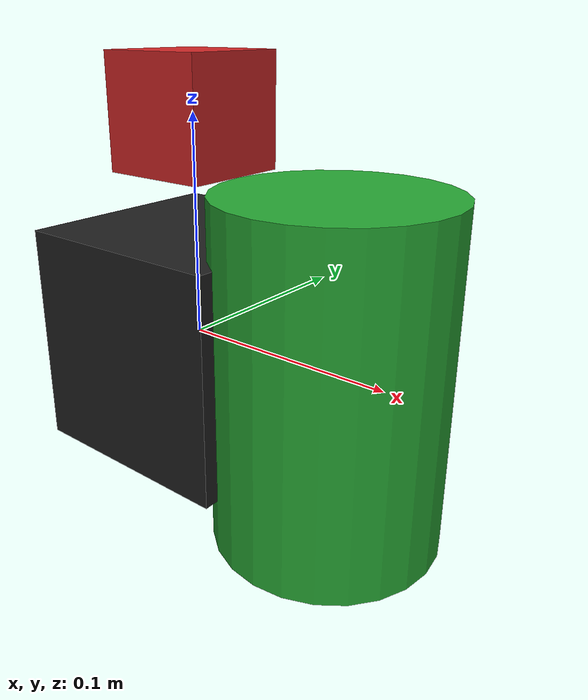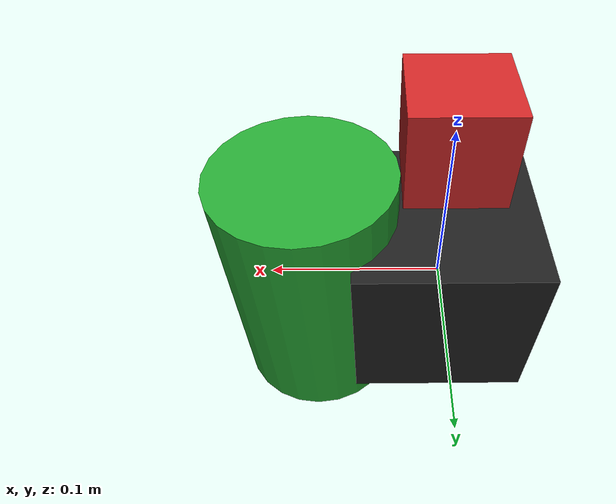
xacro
<?xml version="1.0"?>
<robot name="eye" xmlns:xacro="http://www.ros.org/wiki/xacro">

  <!-- Import all Gazebo-customization elements, including Gazebo colors -->
  <xacro:include filename="$(find eye_description)/urdf/eye.gazebo" />
  <!-- Import Rviz colors -->
  <xacro:include filename="$(find eye_description)/urdf/materials.xacro" />

  <xacro:property name="pi" value="3.1415926535897931" />

  <link name="base_link">
    <visual>
      <origin rpy="0 0 0" xyz="0 0 0"/>
      <geometry>
        <box size="0.1 0.1 0.1"/>
      </geometry>
      <material name="black"/>
    </visual>

    <collision>
      <geometry>
        <box size="0.1 0.1 0.1"/>
      </geometry>
    </collision>

    <inertial>
      <mass value="5"/>
      <inertia ixx="0.083" ixy="0.0"   ixz="0.0"
                           iyy="0.083" iyz="0.0"
                                       izz="0.083"/>
    </inertial>
  </link>

  <xacro:property name="sonar_length" value="0.15" />
  <xacro:property name="sonar_radius" value="0.05" />
  <joint name="sonar_joint" type="fixed">
    <axis xyz="0 0 0" />
    <origin xyz="${sonar_length/2} 0 0" rpy="0 ${pi} ${pi}"/>
    <parent link="base_link"/>
    <child link="sonar_link"/>
  </joint>

  <link name="sonar_link">
    <collision>
      <origin xyz="0 0 0" rpy="0 0 0"/>
      <geometry>
        <cylinder length="${sonar_length}" radius="${sonar_radius}"/>
      </geometry>
    </collision>

    <visual>
      <origin xyz="0 0 0" rpy="0 0 0"/>
      <geometry>
        <cylinder length="${sonar_length}" radius="${sonar_radius}"/>
      </geometry>
      <material name="green"/>
    </visual>

    <inertial>
      <mass value="1e-5" />
      <origin xyz="0 0 0" rpy="0 0 0"/>
      <inertia ixx="1e-6" ixy="0" ixz="0" iyy="1e-6" iyz="0" izz="1e-6" />
    </inertial>
  </link>

  <!-- DEPTH-->
  <xacro:if value="false">
    <xacro:property name="depth_size" value="0.05" />
    <joint name="depth_joint" type="fixed">
      <axis xyz="0 0 1.5708" />
      <origin xyz="0 0 -${depth_size*2}" rpy="0 0 0"/>
      <parent link="base_link"/>
      <child link="depth_link"/>
    </joint>

    <link name="depth_link">
      <collision>
        <origin xyz="0 0 0" rpy="0 0 0"/>
        <geometry>
          <box size="${depth_size} ${depth_size} ${depth_size}"/>
        </geometry>
      </collision>

      <visual>
        <origin xyz="0 0 0" rpy="0 0 0"/>
        <geometry>
          <box size="${depth_size} ${depth_size} ${depth_size}"/>
        </geometry>
        <material name="blue"/>
      </visual>

      <inertial>
        <mass value="1e-5" />
        <origin xyz="0 0 0" rpy="0 0 0"/>
        <inertia ixx="1e-6" ixy="0" ixz="0" iyy="1e-6" iyz="0" izz="1e-6" />
      </inertial>
    </link>
  </xacro:if>

  <xacro:property name="camera_size" value="0.05" />
  <joint name="camera_joint" type="fixed">
    <axis xyz="0 0 1.5708" />
    <origin xyz="0 0 ${camera_size*2}" rpy="0 0 0"/>
    <parent link="base_link"/>
    <child link="camera_link"/>
  </joint>

  <!-- Camera -->
  <link name="camera_link">
    <collision>
      <origin xyz="0 0 0" rpy="0 0 0"/>
      <geometry>
    <box size="${camera_size} ${camera_size} ${camera_size}"/>
      </geometry>
    </collision>

    <visual>
      <origin xyz="0 0 0" rpy="0 0 0"/>
      <geometry>
    <box size="${camera_size} ${camera_size} ${camera_size}"/>
      </geometry>
      <material name="red"/>
    </visual>

    <inertial>
      <mass value="1e-5" />
      <origin xyz="0 0 0" rpy="0 0 0"/>
      <inertia ixx="1e-6" ixy="0" ixz="0" iyy="1e-6" iyz="0" izz="1e-6" />
    </inertial>
  </link>

</robot>
